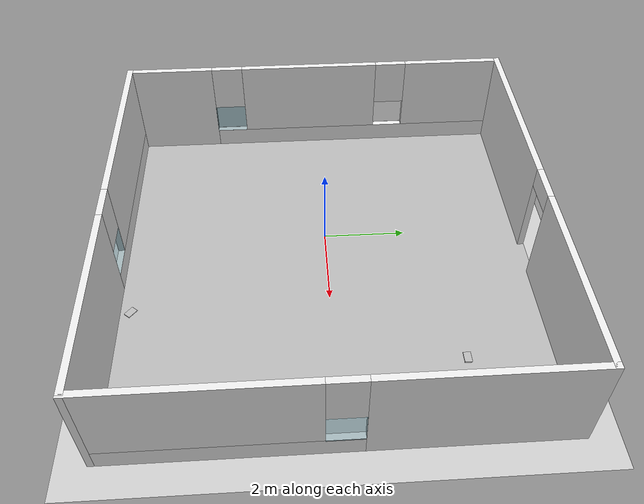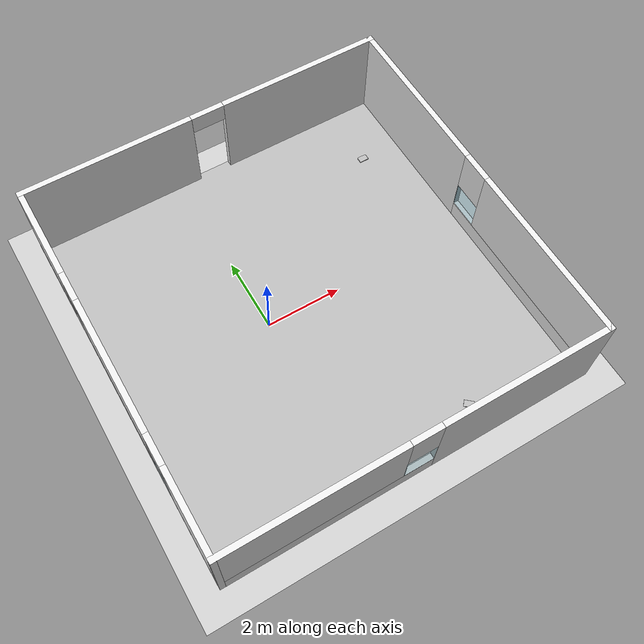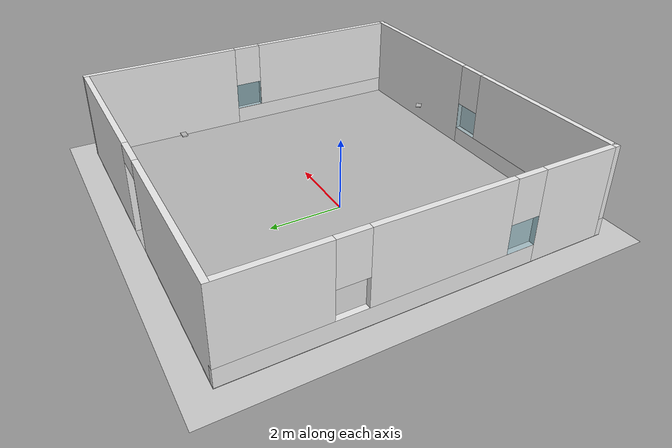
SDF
<sdf version="1.6">
 <world name="default">
  <light name="sun" type="directional">
   <pose>0 0 10 0 -0 0</pose>
   <diffuse>0.8 0.8 0.8 1</diffuse>
   <specular>0.1 0.1 0.1 1</specular>
   <attenuation>
    <range>1000</range>
    <constant>0.9</constant>
    <linear>0.01</linear>
    <quadratic>0.001</quadratic>
   </attenuation>
   <direction>-0.5 0.5 -1</direction>
  </light>
  <model name="ground_plane">
   <static>1</static>
   <link name="link">
    <collision name="collision">
     <geometry><plane><normal>0 0 1</normal><size>100 100</size></plane></geometry>
     <surface><friction><ode><mu>100</mu><mu2>50</mu2></ode></friction></surface>
    </collision>
    <visual name="visual">
     <cast_shadows>0</cast_shadows>
     <geometry><plane><normal>0 0 1</normal><size>100 100</size></plane></geometry>
     <material>
      <script><uri>file://media/materials/scripts/gazebo.material</uri><name>Gazebo/Grey</name></script>
     </material>
    </visual>
   </link>
  </model>
  <gravity>0 0 -9.8</gravity>
  <magnetic_field>6e-06 2.3e-05 -4.2e-05</magnetic_field>
  <atmosphere type="adiabatic"/>
  <physics name="default_physics" default="0" type="ode">
   <max_step_size>0.001</max_step_size>
   <real_time_factor>1</real_time_factor>
   <real_time_update_rate>1000</real_time_update_rate>
  </physics>
  <scene><ambient>0.4 0.4 0.4 1</ambient><background>0.7 0.7 0.7 1</background><shadows>1</shadows></scene>
  <spherical_coordinates>
   <surface_model>EARTH_WGS84</surface_model>
   <latitude_deg>0</latitude_deg>
   <longitude_deg>0</longitude_deg>
   <elevation>0</elevation>
   <heading_deg>0</heading_deg>
  </spherical_coordinates>
  <model name="office_small_1">
   <model name="office_small">
    <pose>0.796663 0.043102 0 0 -0 0</pose>
    <link name="Wall_2">
     <pose>0 4.925 0 0 -0 0</pose>
     <visual name="Wall_2_Visual_0">
      <pose>-2.69024 0 1.25 0 -0 0</pose>
      <geometry><box><size>4.61951 0.15 2.5</size></box></geometry>
      <material>
       <script>
        <uri>model://office_small/materials/scripts</uri>
        <uri>model://office_small/materials/textures</uri>
        <name>wall_white</name>
       </script>
      </material>
     </visual>
     <collision name="Wall_2_Collision_0">
      <geometry><box><size>4.61951 0.15 2.5</size></box></geometry>
      <pose>-2.69024 0 1.25 0 -0 0</pose>
     </collision>
     <visual name="Wall_2_Visual_1">
      <pose>2.75976 0 1.25 0 -0 0</pose>
      <geometry><box><size>4.48049 0.15 2.5</size></box></geometry>
      <material>
       <script>
        <uri>model://office_small/materials/scripts</uri>
        <uri>model://office_small/materials/textures</uri>
        <name>wall_white</name>
       </script>
      </material>
     </visual>
     <collision name="Wall_2_Collision_1">
      <geometry><box><size>4.48049 0.15 2.5</size></box></geometry>
      <pose>2.75976 0 1.25 0 -0 0</pose>
     </collision>
     <visual name="Wall_2_Visual_2">
      <pose>0.06951 0 2.25 0 -0 0</pose>
      <geometry><box><size>0.9 0.15 0.5</size></box></geometry>
      <material>
       <script>
        <uri>model://office_small/materials/scripts</uri>
        <uri>model://office_small/materials/textures</uri>
        <name>wall_white</name>
       </script>
      </material>
     </visual>
     <collision name="Wall_2_Collision_2">
      <geometry><box><size>0.9 0.15 0.5</size></box></geometry>
      <pose>0.06951 0 2.25 0 -0 0</pose>
     </collision>
    </link>
    <link name="Wall_3">
     <pose>4.925 0 0 0 0 -1.5708</pose>
     <visual name="Wall_3_Visual_0">
      <pose>-2.74228 0 1.25 0 -0 0</pose>
      <geometry><box><size>4.51544 0.15 2.5</size></box></geometry>
      <material>
       <script>
        <uri>model://office_small/materials/scripts</uri>
        <uri>model://office_small/materials/textures</uri>
        <name>wall_white</name>
       </script>
      </material>
     </visual>
     <collision name="Wall_3_Collision_0">
      <geometry><box><size>4.51544 0.15 2.5</size></box></geometry>
      <pose>-2.74228 0 1.25 0 -0 0</pose>
     </collision>
     <visual name="Wall_3_Visual_1">
      <pose>2.25772 0 0.25 0 -0 0</pose>
      <geometry><box><size>5.48456 0.15 0.5</size></box></geometry>
      <material>
       <script>
        <uri>model://office_small/materials/scripts</uri>
        <uri>model://office_small/materials/textures</uri>
        <name>wall_white</name>
       </script>
      </material>
     </visual>
     <collision name="Wall_3_Collision_1">
      <geometry><box><size>5.48456 0.15 0.5</size></box></geometry>
      <pose>2.25772 0 0.25 0 -0 0</pose>
     </collision>
     <visual name="Wall_3_Visual_2">
      <pose>2.65772 0 1.5 0 -0 0</pose>
      <geometry><box><size>4.68456 0.15 2</size></box></geometry>
      <material>
       <script>
        <uri>model://office_small/materials/scripts</uri>
        <uri>model://office_small/materials/textures</uri>
        <name>wall_white</name>
       </script>
      </material>
     </visual>
     <collision name="Wall_3_Collision_2">
      <geometry><box><size>4.68456 0.15 2</size></box></geometry>
      <pose>2.65772 0 1.5 0 -0 0</pose>
     </collision>
     <visual name="Wall_3_Visual_3">
      <pose>-0.084559 0 1.9 0 -0 0</pose>
      <geometry><box><size>0.8 0.15 1.2</size></box></geometry>
      <material>
       <script>
        <uri>model://office_small/materials/scripts</uri>
        <uri>model://office_small/materials/textures</uri>
        <name>wall_white</name>
       </script>
      </material>
     </visual>
     <collision name="Wall_3_Collision_3">
      <geometry><box><size>0.8 0.15 1.2</size></box></geometry>
      <pose>-0.084559 0 1.9 0 -0 0</pose>
     </collision>
    </link>
    <link name="Wall_4">
     <pose>0 -4.925 0 0 -0 3.14159</pose>
     <visual name="Wall_4_Visual_0">
      <pose>-2.74632 0 1.25 0 -0 0</pose>
      <geometry><box><size>4.50736 0.15 2.5</size></box></geometry>
      <material>
       <script>
        <uri>model://office_small/materials/scripts</uri>
        <uri>model://office_small/materials/textures</uri>
        <name>wall_white</name>
       </script>
      </material>
     </visual>
     <collision name="Wall_4_Collision_0">
      <geometry><box><size>4.50736 0.15 2.5</size></box></geometry>
      <pose>-2.74632 0 1.25 0 -0 0</pose>
     </collision>
     <visual name="Wall_4_Visual_1">
      <pose>2.25368 0 0.25 0 -0 0</pose>
      <geometry><box><size>5.49264 0.15 0.5</size></box></geometry>
      <material>
       <script>
        <uri>model://office_small/materials/scripts</uri>
        <uri>model://office_small/materials/textures</uri>
        <name>wall_white</name>
       </script>
      </material>
     </visual>
     <collision name="Wall_4_Collision_1">
      <geometry><box><size>5.49264 0.15 0.5</size></box></geometry>
      <pose>2.25368 0 0.25 0 -0 0</pose>
     </collision>
     <visual name="Wall_4_Visual_2">
      <pose>2.65368 0 1.5 0 -0 0</pose>
      <geometry><box><size>4.69264 0.15 2</size></box></geometry>
      <material>
       <script>
        <uri>model://office_small/materials/scripts</uri>
        <uri>model://office_small/materials/textures</uri>
        <name>wall_white</name>
       </script>
      </material>
     </visual>
     <collision name="Wall_4_Collision_2">
      <geometry><box><size>4.69264 0.15 2</size></box></geometry>
      <pose>2.65368 0 1.5 0 -0 0</pose>
     </collision>
     <visual name="Wall_4_Visual_3">
      <pose>-0.09264 0 1.9 0 -0 0</pose>
      <geometry><box><size>0.8 0.15 1.2</size></box></geometry>
      <material>
       <script>
        <uri>model://office_small/materials/scripts</uri>
        <uri>model://office_small/materials/textures</uri>
        <name>wall_white</name>
       </script>
      </material>
     </visual>
     <collision name="Wall_4_Collision_3">
      <geometry><box><size>0.8 0.15 1.2</size></box></geometry>
      <pose>-0.09264 0 1.9 0 -0 0</pose>
     </collision>
    </link>
    <link name="Wall_5">
     <pose>-4.925 0 0 0 -0 1.5708</pose>
     <visual name="Wall_5_Visual_0">
      <pose>-3.88364 0 1.25 0 -0 0</pose>
      <geometry><box><size>2.23271 0.15 2.5</size></box></geometry>
      <material>
       <script>
        <uri>model://office_small/materials/scripts</uri>
        <uri>model://office_small/materials/textures</uri>
        <name>wall_white</name>
       </script>
      </material>
     </visual>
     <collision name="Wall_5_Collision_0">
      <geometry><box><size>2.23271 0.15 2.5</size></box></geometry>
      <pose>-3.88364 0 1.25 0 -0 0</pose>
     </collision>
     <visual name="Wall_5_Visual_1">
      <pose>1.11636 0 0.25 0 -0 0</pose>
      <geometry><box><size>7.76729 0.15 0.5</size></box></geometry>
      <material>
       <script>
        <uri>model://office_small/materials/scripts</uri>
        <uri>model://office_small/materials/textures</uri>
        <name>wall_white</name>
       </script>
      </material>
     </visual>
     <collision name="Wall_5_Collision_1">
      <geometry><box><size>7.76729 0.15 0.5</size></box></geometry>
      <pose>1.11636 0 0.25 0 -0 0</pose>
     </collision>
     <visual name="Wall_5_Visual_2">
      <pose>-0.169878 0 1.5 0 -0 0</pose>
      <geometry><box><size>3.59482 0.15 2</size></box></geometry>
      <material>
       <script>
        <uri>model://office_small/materials/scripts</uri>
        <uri>model://office_small/materials/textures</uri>
        <name>wall_white</name>
       </script>
      </material>
     </visual>
     <collision name="Wall_5_Collision_2">
      <geometry><box><size>3.59482 0.15 2</size></box></geometry>
      <pose>-0.169878 0 1.5 0 -0 0</pose>
     </collision>
     <visual name="Wall_5_Visual_3">
      <pose>3.71376 0 1.5 0 -0 0</pose>
      <geometry><box><size>2.57247 0.15 2</size></box></geometry>
      <material>
       <script>
        <uri>model://office_small/materials/scripts</uri>
        <uri>model://office_small/materials/textures</uri>
        <name>wall_white</name>
       </script>
      </material>
     </visual>
     <collision name="Wall_5_Collision_3">
      <geometry><box><size>2.57247 0.15 2</size></box></geometry>
      <pose>3.71376 0 1.5 0 -0 0</pose>
     </collision>
     <visual name="Wall_5_Visual_4">
      <pose>-2.36729 0 1.9 0 -0 0</pose>
      <geometry><box><size>0.8 0.15 1.2</size></box></geometry>
      <material>
       <script>
        <uri>model://office_small/materials/scripts</uri>
        <uri>model://office_small/materials/textures</uri>
        <name>wall_white</name>
       </script>
      </material>
     </visual>
     <collision name="Wall_5_Collision_4">
      <geometry><box><size>0.8 0.15 1.2</size></box></geometry>
      <pose>-2.36729 0 1.9 0 -0 0</pose>
     </collision>
     <visual name="Wall_5_Visual_5">
      <pose>2.02753 0 1.9 0 -0 0</pose>
      <geometry><box><size>0.8 0.15 1.2</size></box></geometry>
      <material>
       <script>
        <uri>model://office_small/materials/scripts</uri>
        <uri>model://office_small/materials/textures</uri>
        <name>wall_white</name>
       </script>
      </material>
     </visual>
     <collision name="Wall_5_Collision_5">
      <geometry><box><size>0.8 0.15 1.2</size></box></geometry>
      <pose>2.02753 0 1.9 0 -0 0</pose>
     </collision>
    </link>
    <static>1</static>
   </model>
   <model name="window_0">
    <link name="link_2">
     <visual name="visual">
      <pose>0 0 0.9 0 -0 0</pose>
      <geometry><box><size>0.8 0.15 0.8</size></box></geometry>
      <material>
       <lighting>1</lighting>
       <ambient>0.1 0.5 0.6 1</ambient>
       <diffuse>0.1 0.5 0.6 1</diffuse>
       <specular>0.01 0.01 0.01 1</specular>
       <emissive>0 0 0 1</emissive>
      </material>
      <transparency>0.7</transparency>
     </visual>
     <collision name="collision">
      <pose>0 0 0.9 0 -0 0</pose>
      <geometry><box><size>0.8 0.15 0.8</size></box></geometry>
     </collision>
    </link>
    <static>1</static>
    <pose>-4.12726 -2.32854 0 0 -0 1.57</pose>
   </model>
   <model name="window_1">
    <link name="link_2">
     <visual name="visual">
      <pose>0 0 0.9 0 -0 0</pose>
      <geometry><box><size>0.8 0.15 0.8</size></box></geometry>
      <material>
       <lighting>1</lighting>
       <ambient>0.1 0.5 0.6 1</ambient>
       <diffuse>0.1 0.5 0.6 1</diffuse>
       <specular>0.01 0.01 0.01 1</specular>
       <emissive>0 0 0 1</emissive>
      </material>
      <transparency>0.7</transparency>
     </visual>
     <collision name="collision">
      <pose>0 0 0.9 0 -0 0</pose>
      <geometry><box><size>0.8 0.15 0.8</size></box></geometry>
     </collision>
    </link>
    <static>1</static>
    <pose>0.875059 -4.88342 0 0 -0 0</pose>
   </model>
   <model name="window_2">
    <link name="link_2">
     <visual name="visual">
      <pose>0 0 0.9 0 -0 0</pose>
      <geometry><box><size>0.8 0.15 0.8</size></box></geometry>
      <material>
       <lighting>1</lighting>
       <ambient>0.1 0.5 0.6 1</ambient>
       <diffuse>0.1 0.5 0.6 1</diffuse>
       <specular>0.01 0.01 0.01 1</specular>
       <emissive>0 0 0 1</emissive>
      </material>
      <transparency>0.7</transparency>
     </visual>
     <collision name="collision">
      <pose>0 0 0.9 0 -0 0</pose>
      <geometry><box><size>0.8 0.15 0.8</size></box></geometry>
     </collision>
    </link>
    <static>1</static>
    <pose>5.73592 0.126978 0 0 -0 1.57</pose>
   </model>
   <model name="Floor">
    <link name="main">
     <pose>0.795 0.05 0.01 0 -0 0</pose>
     <collision name="main_Collision"><geometry><box><size>10 10 0.01</size></box></geometry></collision>
     <visual name="main_Visual">
      <geometry><box><size>10 10 0.01</size></box></geometry>
      <material>
       <script>
        <uri>model://office_small/materials/scripts</uri>
        <uri>model://office_small/materials/textures</uri>
        <name>floor</name>
       </script>
      </material>
     </visual>
    </link>
    <static>1</static>
   </model>
   <static>0</static>
   <pose>0.163253 -0.068016 0 0 -0 0</pose>
  </model>
  <model name="book_3">
   <link name="cover">
    <pose>0 -0.000108 0.01 0 -0 0</pose>
    <visual name="visual">
     <geometry><box><size>0.245 0.16 0.02</size></box></geometry>
     <material>
      <script>
       <uri>model://book_3/materials/scripts</uri>
       <uri>model://book_3/materials/textures</uri>
       <name>book_3</name>
      </script>
     </material>
    </visual>
    <collision name="collision"><geometry><box><size>0.245 0.16 0.02</size></box></geometry></collision>
   </link>
   <link name="page">
    <pose>0 0.000608 0.01 0 -0 0</pose>
    <visual name="visual">
     <geometry><box><size>0.24502 0.15862 0.018</size></box></geometry>
     <material>
      <lighting>1</lighting>
      <ambient>1 1 1 1</ambient>
      <diffuse>1 1 1 1</diffuse>
      <specular>0.01 0.01 0.01 1</specular>
      <emissive>0 0 0 1</emissive>
      <shader type="vertex"><normal_map>__default__</normal_map></shader>
     </material>
    </visual>
    <collision name="collision"><geometry><box><size>0.245 0.16 0.018</size></box></geometry></collision>
   </link>
   <static>1</static>
   <pose>2.79077 -4.41775 0.767819 0 0 -0.700697</pose>
  </model>
  <model name="book_19">
   <link name="cover">
    <pose>0 -0.000108 0.015405 0 -0 0</pose>
    <visual name="visual">
     <geometry><box><size>0.245 0.16 0.03</size></box></geometry>
     <material>
      <script>
       <uri>model://book_19/materials/scripts</uri>
       <uri>model://book_19/materials/textures</uri>
       <name>book_19</name>
      </script>
     </material>
    </visual>
    <collision name="collision"><geometry><box><size>0.245 0.16 0.03</size></box></geometry></collision>
   </link>
   <link name="page">
    <pose>0 0.000608 0.015405 0 -0 0</pose>
    <visual name="visual">
     <geometry><box><size>0.24502 0.15862 0.028</size></box></geometry>
     <material>
      <lighting>1</lighting>
      <ambient>1 1 1 1</ambient>
      <diffuse>1 1 1 1</diffuse>
      <specular>0.01 0.01 0.01 1</specular>
      <emissive>0 0 0 1</emissive>
      <shader type="vertex"><normal_map>__default__</normal_map></shader>
     </material>
    </visual>
    <collision name="collision"><geometry><box><size>0.245 0.16 0.03</size></box></geometry></collision>
   </link>
   <static>1</static>
   <pose>4.39835 2.70804 0.766184 0 -0 0</pose>
  </model>
  <audio><device>default</device></audio>
 </world>
</sdf>
